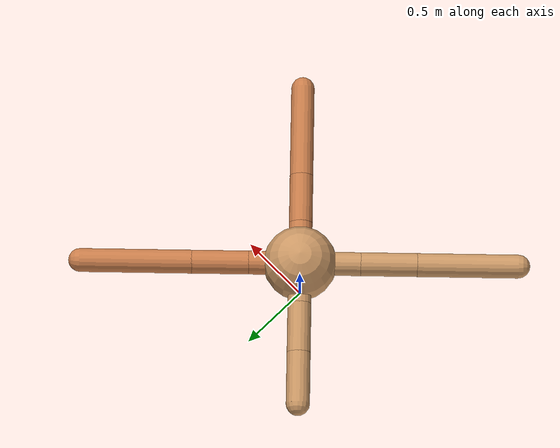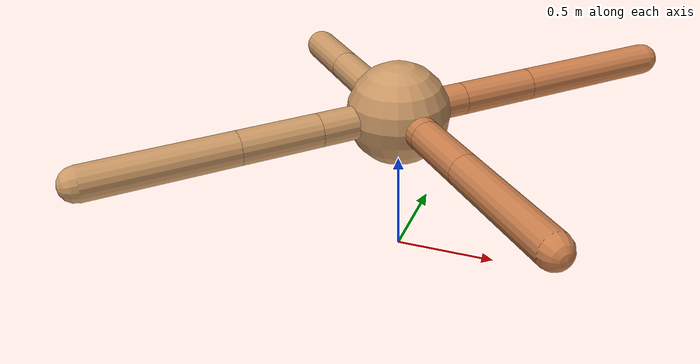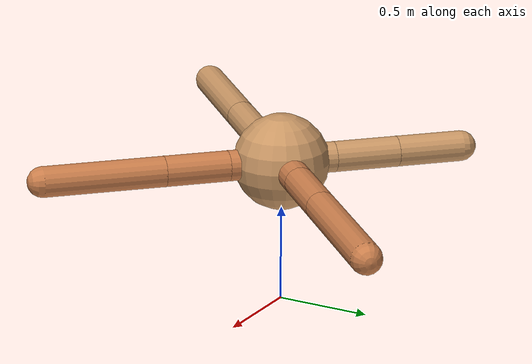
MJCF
<mujoco model="ant">
  <compiler angle="degree" coordinate="local" inertiafromgeom="true" />
  <option integrator="RK4" timestep="0.01" />
  <custom>
    <numeric data="0.0 0.0 0.55 1.0 0.0 0.0 0.0 0.0 1.0 0.0 -1.0 0.0 -1.0 0.0 1.0" name="init_qpos" />
  </custom>
  <default>
    <joint armature="1" damping="1" limited="true" />
    <geom conaffinity="0" condim="3" density="5.0" friction="1.5 0.1 0.1" margin="0.01" rgba="0.8 0.6 0.4 1" />
  </default>
  <worldbody>
    <body name="torso" pos="0 0 0.75">
      <geom name="torso_geom" pos="0 0 0" size="0.25" type="sphere" />

      <body name="front_left_leg" pos="0 0 0">
        <geom fromto="0.0 0.0 0.0 0.24464789200871398 0.24464789200871398 0.0" name="aux_1_geom" size="0.08" type="capsule" rgba=".8 .5 .3 1" />
        <body name="aux_1" pos="0.24464789200871398 0.24464789200871398 0.0">
          <joint axis="0 0 1" name="hip_1" pos="0.0 0.0 0.0" range="-40 40" type="hinge" />
          <geom fromto="0.0 0.0 0.0 0.2705601146787237 0.2705601146787237 0.0" name="left_leg_geom" size="0.08" type="capsule" rgba=".8 .5 .3 1" />
          <body pos="0.2705601146787237 0.2705601146787237 0.0" name="front_left_foot">
            <joint axis="-1 1 0" name="ankle_1" pos="0.0 0.0 0.0" range="30 100" type="hinge" />
            <geom fromto="0.0 0.0 0.0 0.5328867153875452 0.5328867153875452 0.0" name="left_ankle_geom" size="0.08" type="capsule" rgba=".8 .5 .3 1" />
          </body>
        </body>
      </body>
      <body name="front_right_leg" pos="0 0 0">
        <geom fromto="0.0 0.0 0.0 -0.2 0.2 0.0" name="aux_2_geom" size="0.08" type="capsule" />
        <body name="aux_2" pos="-0.2 0.2 0.0">
          <joint axis="0 0 1" name="hip_2" pos="0.0 0.0 0.0" range="-40 40" type="hinge" />
          <geom fromto="0.0 0.0 0.0 -0.2392764315404166 0.2392764315404166 0.0" name="right_leg_geom" size="0.08" type="capsule" />
          <body pos="-0.2392764315404166 0.2392764315404166 0.0" name="front_right_foot">
            <joint axis="1 1 0" name="ankle_2" pos="0.0 0.0 0.0" range="-100 -30" type="hinge" />
            <geom fromto="0.0 0.0 0.0 -0.2468704687036401 0.2468704687036401 0.0" name="right_ankle_geom" size="0.08" type="capsule" />
          </body>
        </body>
      </body>
      <body name="left_back_leg" pos="0 0 0">
        <geom fromto="0.0 0.0 0.0 -0.2882099129855092 -0.2882099129855092 0.0" name="aux_3_geom" size="0.08" type="capsule" />
        <body name="aux_3" pos="-0.2882099129855092 -0.2882099129855092 0.0">
          <joint axis="0 0 1" name="hip_3" pos="0.0 0.0 0.0" range="-40 40" type="hinge" />
          <geom fromto="0.0 0.0 0.0 -0.26851041600875813 -0.26851041600875813 0.0" name="back_leg_geom" size="0.08" type="capsule" />
          <body pos="-0.26851041600875813 -0.26851041600875813 0.0" name="left_back_foot">
            <joint axis="-1 1 0" name="ankle_3" pos="0.0 0.0 0.0" range="-100 -30" type="hinge" />
            <geom fromto="0.0 0.0 0.0 -0.4821941373270029 -0.4821941373270029 0.0" name="third_ankle_geom" size="0.08" type="capsule" />
          </body>
        </body>
      </body>
      <body name="right_back_leg" pos="0 0 0">
        <geom fromto="0.0 0.0 0.0 0.2 -0.2 0.0" name="aux_4_geom" size="0.08" type="capsule" rgba=".8 .5 .3 1" />
        <body name="aux_4" pos="0.2 -0.2 0.0">
          <joint axis="0 0 1" name="hip_4" pos="0.0 0.0 0.0" range="-40 40" type="hinge" />
          <geom fromto="0.0 0.0 0.0 0.2370586674899766 -0.2370586674899766 0.0" name="rightback_leg_geom" size="0.08" type="capsule" rgba=".8 .5 .3 1" />
          <body pos="0.2370586674899766 -0.2370586674899766 0.0" name="right_back_foot">
            <joint axis="1 1 0" name="ankle_4" pos="0.0 0.0 0.0" range="30 100" type="hinge" />
            <geom fromto="0.0 0.0 0.0 0.4480057420794748 -0.4480057420794748 0.0" name="fourth_ankle_geom" size="0.08" type="capsule" rgba=".8 .5 .3 1" />
          </body>
        </body>
      </body>
    </body>
  </worldbody>
  <actuator>
    <motor ctrllimited="true" ctrlrange="-1.0 1.0" joint="hip_4" gear="150" />
    <motor ctrllimited="true" ctrlrange="-1.0 1.0" joint="ankle_4" gear="150" />
    <motor ctrllimited="true" ctrlrange="-1.0 1.0" joint="hip_1" gear="150" />
    <motor ctrllimited="true" ctrlrange="-1.0 1.0" joint="ankle_1" gear="150" />
    <motor ctrllimited="true" ctrlrange="-1.0 1.0" joint="hip_2" gear="150" />
    <motor ctrllimited="true" ctrlrange="-1.0 1.0" joint="ankle_2" gear="150" />
    <motor ctrllimited="true" ctrlrange="-1.0 1.0" joint="hip_3" gear="150" />
    <motor ctrllimited="true" ctrlrange="-1.0 1.0" joint="ankle_3" gear="150" />
  </actuator>
</mujoco>
